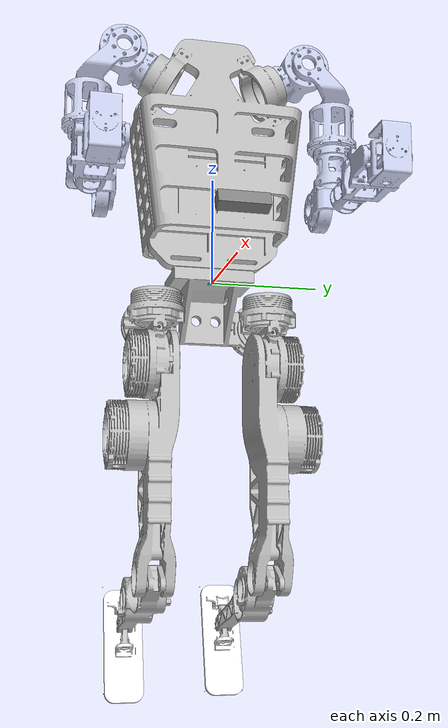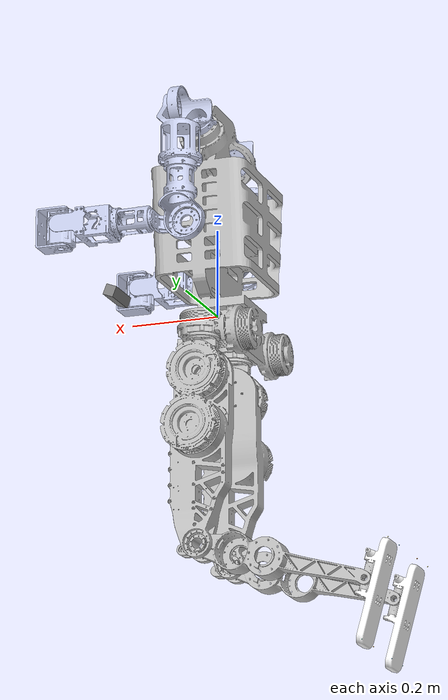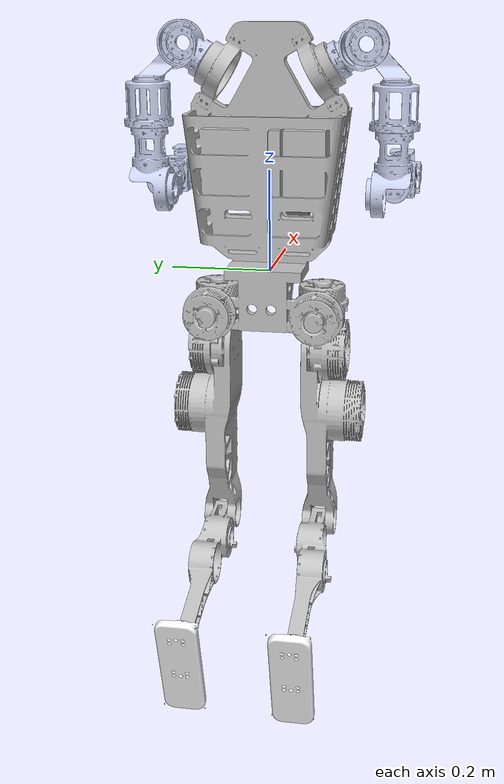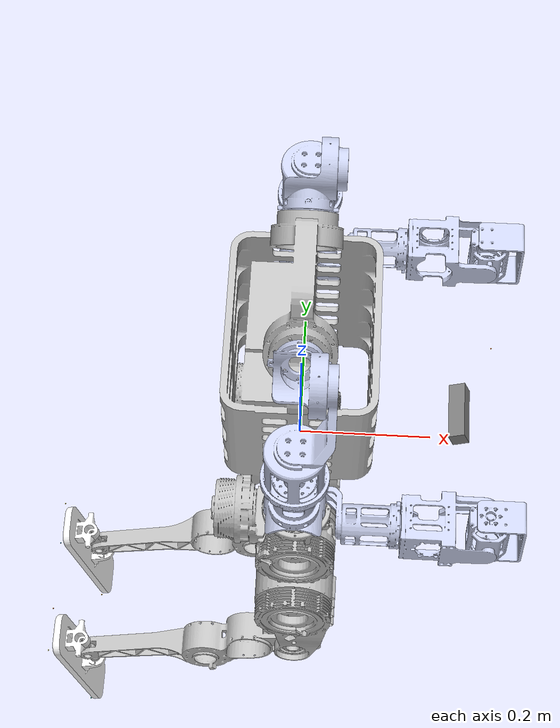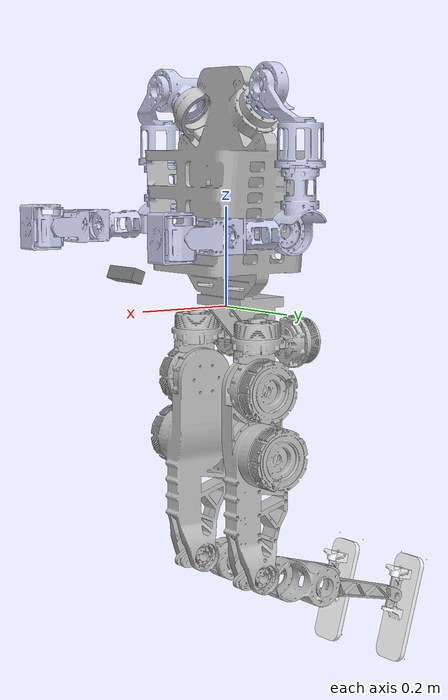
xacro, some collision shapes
<?xml version="1.0"?>

<robot xmlns:xacro="http://www.ros.org/wiki/xacro" name="hunter">
    <xacro:arg name="sim" default="false"/>

    <xacro:include filename="$(find legged_hunter_description)/urdf/hunter_sim.xacro"/>

    <xacro:include filename="$(find legged_hunter_description)/urdf/sensor_d435.xacro"/>

    <xacro:sensor_d435 name="front_camera" topics_ns="front_camera" parent="base_link">
        <origin xyz="0.25 -0.0 0.08" rpy="3.141 1.2 0"/>
    </xacro:sensor_d435>

</robot>

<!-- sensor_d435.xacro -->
<robot xmlns:xacro="http://ros.org/wiki/xacro" name="hunter">

    <xacro:macro name="sensor_d435"
                 params="name:=camera topics_ns:=camera parent *origin publish_pointcloud:=true sim:=true">
        <xacro:property name="M_PI" value="3.1415926535897931"/>

        <!-- The following values are approximate, and the camera node
         publishing TF values with actual calibrated camera extrinsic values -->
        <xacro:property name="d435_cam_depth_to_left_ir_offset" value="0.0"/>
        <xacro:property name="d435_cam_depth_to_right_ir_offset" value="-0.050"/>
        <xacro:property name="d435_cam_depth_to_color_offset" value="0.015"/>

        <!-- The following values model the aluminum peripherial case for the
        D435 camera, with the camera joint represented by the actual
        peripherial camera tripod mount -->
        <xacro:property name="d435_cam_width" value="0.090"/>
        <xacro:property name="d435_cam_height" value="0.025"/>
        <xacro:property name="d435_cam_depth" value="0.02505"/>
        <xacro:property name="d435_cam_mount_from_center_offset" value="0.0149"/>

        <!-- The following offset is relative the physical D435 camera peripherial
        camera tripod mount -->
        <xacro:property name="d435_cam_depth_px" value="${d435_cam_mount_from_center_offset}"/>
        <xacro:property name="d435_cam_depth_py" value="0.0175"/>
        <xacro:property name="d435_cam_depth_pz" value="${d435_cam_height/2}"/>

        <material name="${name}_aluminum">
            <color rgba="0.5 0.5 0.5 1"/>
        </material>

        <!-- camera body, with origin at bottom screw mount -->
        <joint name="${name}_joint" type="fixed">
            <xacro:insert_block name="origin"/>
            <parent link="${parent}"/>
            <child link="${name}_bottom_screw_frame"/>
        </joint>
        <link name="${name}_bottom_screw_frame"/>

        <joint name="${name}_link_joint" type="fixed">
            <origin xyz="0 ${d435_cam_depth_py} ${d435_cam_depth_pz}" rpy="0 0 0"/>
            <parent link="${name}_bottom_screw_frame"/>
            <child link="${name}_link"/>
        </joint>

        <link name="${name}_link">
            <visual>
                <origin xyz="${d435_cam_mount_from_center_offset} ${-d435_cam_depth_py} 0" rpy="${M_PI/2} 0 ${M_PI/2}"/>
                <geometry>
                    <mesh filename="package://realsense2_description/meshes/d435.dae"/>
                </geometry>
                <material name="${name}_aluminum"/>
            </visual>
            <collision>
                <origin xyz="0 ${-d435_cam_depth_py} 0" rpy="0 0 0"/>
                <geometry>
                    <box size="${d435_cam_depth} ${d435_cam_width} ${d435_cam_height}"/>
                </geometry>
            </collision>
            <inertial>
                <!-- The following are not reliable values, and should not be used for modeling -->
                <mass value="0.072"/>
                <origin xyz="0 0 0"/>
                <inertia ixx="0.003881243" ixy="0.0" ixz="0.0" iyy="0.000498940" iyz="0.0" izz="0.003879257"/>
            </inertial>
        </link>

            <!-- camera depth joints and links -->
            <joint name="${name}_depth_joint" type="fixed">
                <origin xyz="0 0 0" rpy="0 0 0"/>
                <parent link="${name}_link"/>
                <child link="${name}_depth_frame"/>
            </joint>
            <link name="${name}_depth_frame"/>

            <joint name="${name}_depth_optical_joint" type="fixed">
                <origin xyz="0 0 0" rpy="${-M_PI/2} 0 ${-M_PI/2}"/>
                <parent link="${name}_depth_frame"/>
                <child link="${name}_depth_optical_frame"/>
            </joint>
            <link name="${name}_depth_optical_frame"/>

            <!-- camera left IR joints and links -->
            <joint name="${name}_left_ir_joint" type="fixed">
                <origin xyz="0 ${d435_cam_depth_to_left_ir_offset} 0" rpy="0 0 0"/>
                <parent link="${name}_depth_frame"/>
                <child link="${name}_left_ir_frame"/>
            </joint>
            <link name="${name}_left_ir_frame"/>

            <joint name="${name}_left_ir_optical_joint" type="fixed">
                <origin xyz="0 0 0" rpy="${-M_PI/2} 0 ${-M_PI/2}"/>
                <parent link="${name}_left_ir_frame"/>
                <child link="${name}_left_ir_optical_frame"/>
            </joint>
            <link name="${name}_left_ir_optical_frame"/>

            <!-- camera right IR joints and links -->
            <joint name="${name}_right_ir_joint" type="fixed">
                <origin xyz="0 ${d435_cam_depth_to_right_ir_offset} 0" rpy="0 0 0"/>
                <parent link="${name}_depth_frame"/>
                <child link="${name}_right_ir_frame"/>
            </joint>
            <link name="${name}_right_ir_frame"/>

            <joint name="${name}_right_ir_optical_joint" type="fixed">
                <origin xyz="0 0 0" rpy="${-M_PI/2} 0 ${-M_PI/2}"/>
                <parent link="${name}_right_ir_frame"/>
                <child link="${name}_right_ir_optical_frame"/>
            </joint>
            <link name="${name}_right_ir_optical_frame"/>

            <!-- camera color joints and links -->
            <joint name="${name}_color_joint" type="fixed">
                <origin xyz="0 ${d435_cam_depth_to_color_offset} 0" rpy="0 0 0"/>
                <parent link="${name}_depth_frame"/>
                <child link="${name}_color_frame"/>
            </joint>
            <link name="${name}_color_frame"/>

            <joint name="${name}_color_optical_joint" type="fixed">
                <origin xyz="0 0 0" rpy="${-M_PI/2} 0 ${-M_PI/2}"/>
                <parent link="${name}_color_frame"/>
                <child link="${name}_color_optical_frame"/>
            </joint>
            <link name="${name}_color_optical_frame"/>

            <xacro:include filename="$(find legged_hunter_description)/urdf/gazebo_d400.xacro"/>

            <!-- Realsense Gazebo Plugin -->
            <xacro:gazebo_d400 camera_name="${name}" reference_link="${name}_link" topics_ns="${topics_ns}"
                               depth_optical_frame="${name}_depth_optical_frame"
                               color_optical_frame="${name}_color_optical_frame"
                               infrared1_optical_frame="${name}_left_ir_optical_frame"
                               infrared2_optical_frame="${name}_right_ir_optical_frame"
                               publish_pointcloud="${publish_pointcloud}"/>

    </xacro:macro>
</robot>
